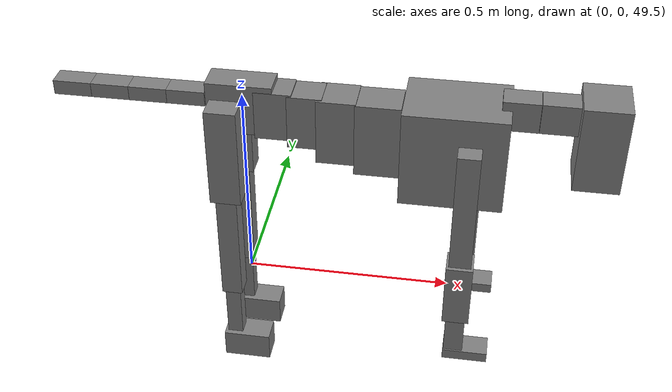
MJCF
<mujoco model="dog">

    <default>
        <joint armature="0.02" stiffness="1" damping="0.2" limited="true"/>
        <geom condim="3" friction="1 0.05 0.05" margin="0.01"/>
        <motor ctrllimited="true" ctrlrange="-1.0 1.0" forcelimited="true" gear="50"/>
    </default>

    <compiler inertiafromgeom="true" angle="radian"/>

    <option timestep="0.016" iterations="50" tolerance="1e-10" solver="Newton" jacobian="dense" cone="pyramidal"/>

    <size nconmax="20000" njmax="60000" nstack="5000000"/>
    <visual>
        <map force="0.1" zfar="30"/>
        <rgba haze="0.15 0.25 0.35 1"/>
        <quality shadowsize="2048"/>
        <global offwidth="800" offheight="800"/>
    </visual>

    <asset>
        <texture type="skybox" builtin="gradient" rgb1="0.3 0.5 0.7" rgb2="0 0 0" width="512" height="512"/>
        <texture name="texplane" type="2d" builtin="checker" rgb1=".2 .3 .4" rgb2=".1 0.15 0.2" width="512" height="512"
                 mark="cross" markrgb=".8 .8 .8"/>
        <texture name="texgeom" type="cube" builtin="flat" mark="cross" width="127" height="1278" rgb1="0.8 0.6 0.4"
                 rgb2="0.8 0.6 0.4" markrgb="1 1 1" random="0.01"/>

        <material name="matplane" reflectance="0.3" texture="texplane" texrepeat="1 1" texuniform="true"/>
        <material name="matgeom" texture="texgeom" texuniform="true" rgba="0.8 0.6 .4 1"/>
    </asset>

    <worldbody>
        <geom name="floor" pos="0 0 0" size="0 0 .25" type="plane" material="matplane" condim="3"/>

        <light directional="false" diffuse=".2 .2 .2" specular="0 0 0" pos="0 0 5" dir="0 0 -1" castshadow="false"/>
        <light mode="targetbodycom" target="torso" directional="false" diffuse=".8 .8 .8" specular="0.3 0.3 0.3"
               pos="0 0 4.0" dir="0 0 -1"/>

        <body name="root" pos="0 0 50">
            <freejoint name="root_1"/>
            <geom type="box" pos="0 0 -0.02" size="0.0774  0.0358  0.063" density="2030"/>

            <body name="spine1" pos="0.054 0 0">
                <joint name="spine1_y" axis="0 1 0" range="0 0.7" limited="true"/>
                <geom type="box" pos="0.02375 0 -0.03" size="0.04375  0.0375  0.05985" density="2030"/>

                <body name="spine2" pos="0.0612 0 0">
                    <joint name="spine2_y" axis="0 1 0" range="-0.15 0.15" limited="true"/>
                    <geom type="box" pos="0.03555  0  -0.04" size="0.04055  0.039  0.06615" density="2030"/>

                    <body name="spine3" pos="0.0730 0 0">
                        <joint name="spine3_y" axis="0 1 0" range="-0.15 0.15" limited="true"/>
                        <geom type="box" pos="0.03555  0  -0.057" size="0.04555  0.0445  0.081" density="2030"/>

                        <body name="spine4" pos="0.0780 0 0">
                            <joint name="spine4_y" axis="0 1 0" range="-0.15 0.15" limited="true"/>
                            <geom type="box" pos="0.05265  0  -0.07" size="0.05265  0.045  0.09135" density="2030"/>

                            <body name="torso" pos="0.1082 0 0">
                                <joint name="torso_y" axis="0 1 0" range="-0.15 0.15" limited="true"/>
                                <geom type="box" pos="0.11925  0  -0.085" size="0.11925  0.085  0.11745"
                                      density="2030"/>

                                <body name="neck1" pos="0.2160  0   0.0180">
                                    <joint name="neck1_y" axis="0 1 0" range="-1.2  -1" limited="true"/>
                                    <geom type="box" pos="0.0423  0  0" size="0.0423  0.03  0.036" density="2325"/>

                                    <body name="neck2" pos="0.0853  0  0">
                                        <joint name="neck2_y" axis="0 1 0" range="0.1  0" limited="true"/>
                                        <geom type="box" pos="0.0423  0  0" size="0.0423  0.03  0.036" density="2325"/>

                                        <body name="head" pos="0.0853  0  0">
                                            <joint name="head_y" axis="0 1 0" range="-0.3  -0.2" limited="true"/>
                                            <geom type="box" pos="0.0531  0  -0.055" size="0.0531  0.06  0.1044"
                                                  density="4030"/>

                                        </body>
                                    </body>
                                </body>

                                <body name="front_shoulder" pos="0.156  0   -0.0480">
                                    <joint name="front_shoulder_y" axis="0 1 0" range="-1 1.5" limited="true"/>
                                    <geom type="box" pos="0 0.13 -0.1369" size="0.0261  0.0223  0.1635" density="1158"/>
                                    <geom type="box" pos="0 -0.13 -0.1369" size="0.0261  0.0223  0.1635"
                                          density="1158"/>

                                    <body name="front_elbow" pos="0  0  -0.2737">
                                        <joint name="front_elbow_y" axis="0 1 0" range="-2 0" limited="true"/>
                                        <geom type="box" pos="0 0.13 -0.0798" size="0.0314  0.0321  0.0798"
                                              density="1081"/>
                                        <geom type="box" pos="0 -0.13 -0.0798" size="0.0314  0.0321  0.0798"
                                              density="1081"/>

                                        <body name="front_wrist" pos="0  0  -0.1596">
                                            <joint name="front_wrist_y" axis="0 1 0" range="-0.2 0" limited="true"/>
                                            <geom type="box" pos="0 0.13 -0.0551" size="0.0229  0.0255  0.0683"
                                                  density="1664"/>
                                            <geom type="box" pos="0 -0.13 -0.0551" size="0.0229  0.0255  0.0683"
                                                  density="1664"/>

                                            <body name="front_finger_end" pos="0  0  -0.1103">
                                                <joint name="front_finger_y" axis="0 1 0" range="-0.4 1"
                                                       limited="true"/>
                                                <geom type="box" pos="0.0293  0.13  0.0023"
                                                      size="0.0538  0.0293  0.0127" density="1515"/>
                                                <geom type="box" pos="0.0293  -0.13  0.0023"
                                                      size="0.0538  0.0293  0.0127" density="1515"/>

                                            </body>

                                        </body>
                                    </body>
                                </body>

                            </body>
                        </body>
                    </body>
                </body>
            </body>

            <body name="back_hip" pos="-0.03 0 -0.018">
                <joint name="back_hip_y" axis="0 1 0" range="-1.5 0.3" limited="true"/>
                <geom type="box" pos="0 0.07 -0.1007" size="0.0369  0.0289  0.1235" density="1154"/>
                <geom type="box" pos="0 -0.07 -0.1007" size="0.0369  0.0289  0.1235" density="1154"/>

                <body name="back_knee" pos="0  0  -0.2014">
                    <joint name="back_knee_y" axis="0 1 0" range="0 2.8" limited="true"/>
                    <geom type="box" pos="0 0.07 -0.1431" size="0.0251  0.0247  0.1586" density="1227"/>
                    <geom type="box" pos="0 -0.07 -0.1431" size="0.0251  0.0247  0.1586" density="1227"/>

                    <body name="back_ankle" pos="0  0  -0.2861">
                        <joint name="back_ankle_y" axis="0 1 0" range="-2.2 0" limited="true"/>
                        <geom type="box" pos="0 0.07 -0.0830" size="0.0189  0.0189  0.0942" density="1284"/>
                        <geom type="box" pos="0 -0.07 -0.0830" size="0.0189  0.0189  0.0942" density="1284"/>

                        <body name="back_toe_end" pos="0  0  -0.1660">
                            <joint name="back_toe_y" axis="0 1 0" range="-0.4 1" limited="true"/>
                            <geom type="box" pos="0.0317  0.07  -0.0205" size="0.0581  0.0317  0.0355" density="1515"/>
                            <geom type="box" pos="0.0317  -0.07  -0.0205" size="0.0581  0.0317  0.0355" density="1515"/>

                        </body>
                    </body>
                </body>
            </body>

            <body name="tail1" pos="-0.074 0 -0.006">
                <joint name="tail1_y" axis="0 1 0" range="-0.2 0.2" limited="true"/>
                <geom type="box" pos="-0.0536  0  0" size="0.045  0.025  0.0175" density="1587"/>

                <body name="tail2" pos="-0.09 0 0">
                    <joint name="tail2_y" axis="0 1 0" range="-0.2 0.2" limited="true"/>
                    <geom type="box" pos="-0.0536  0  0" size="0.045  0.025  0.0175" density="1587"/>

                    <body name="tail3" pos="-0.09 0 0">
                        <joint name="tail3_y" axis="0 1 0" range="-0.2 0.2" limited="true"/>
                        <geom type="box" pos="-0.0536  0  0" size="0.045  0.025  0.0175" density="1587"/>

                        <body name="tail4" pos="-0.09 0 0">
                            <joint name="tail4_y" axis="0 1 0" range="-0.2 0.2" limited="true"/>
                            <geom type="box" pos="-0.0536  0  0" size="0.045  0.025  0.0175" density="1587"/>

                        </body>
                    </body>
                </body>
            </body>
        </body>
    </worldbody>

    <actuator>
        <motor joint="spine1_y" forcerange="-150 150     "/>
        <motor joint="spine2_y" forcerange="-150 150     "/>
        <motor joint="spine3_y" forcerange="-150 150     "/>
        <motor joint="spine4_y" forcerange="-150 150     "/>
        <motor joint="torso_y" forcerange="-150 150     "/>
        <motor joint="neck1_y" forcerange="-100 100       "/>
        <motor joint="neck2_y" forcerange="-100 100       "/>
        <motor joint="head_y" forcerange="-150 150       "/>
        <motor joint="front_shoulder_y" forcerange="-127.51 120.98"/>
        <motor joint="front_elbow_y" forcerange="-178.59 155.07"/>
        <motor joint="front_wrist_y" forcerange="-54.45 149.29"/>
        <motor joint="front_finger_y" forcerange="-55.54 60.98"/>
        <motor joint="back_hip_y" forcerange="-378.21 207.28"/>
        <motor joint="back_knee_y" forcerange="-334.85 225.04"/>
        <motor joint="back_angle_y" forcerange="-140.08 62.23"/>
        <motor joint="back_toe_y" forcerange="-124.77 48.59"/>
        <motor joint="tail1_y" forcerange="-50 50     "/>
        <motor joint="tail2_y" forcerange="-50 50     "/>
        <motor joint="tail3_y" forcerange="-50 50     "/>
        <motor joint="tail4_y" forcerange="-50 50     "/>
    </actuator>
</mujoco>
